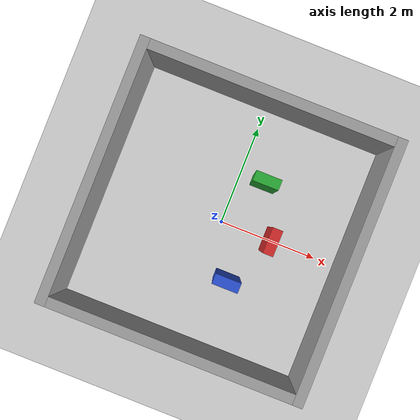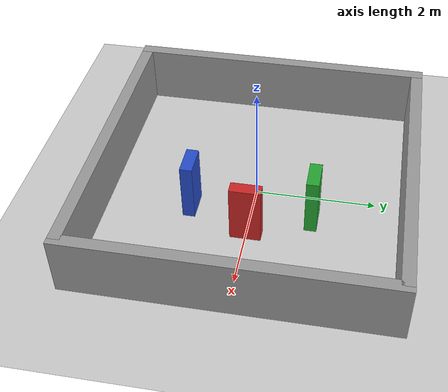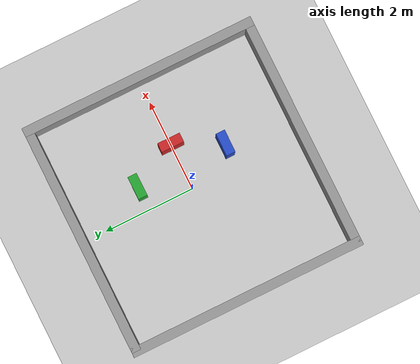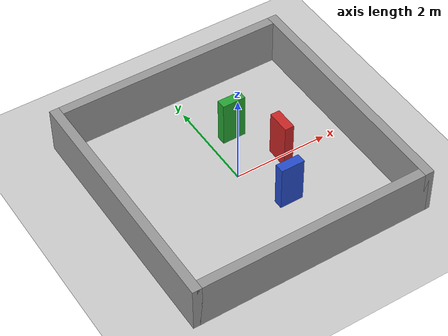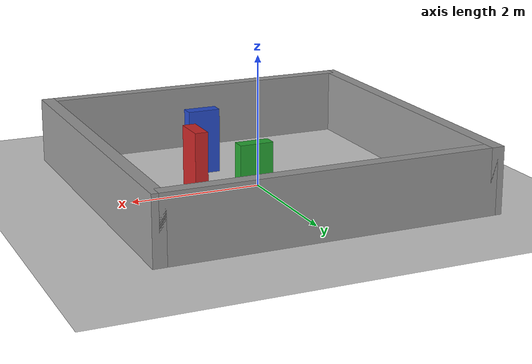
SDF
<?xml version="1.0" ?>
<sdf version="1.6">
  <world name="playground">
    <include>
      <uri>model://sun</uri>
    </include>
    <include>
      <uri>model://ground_plane</uri>
    </include>

    <!-- Obstacle 1: Red Box in front -->
    <model name="obstacle_red">
      <pose>1 0 0.5 0 0 0</pose>
      <static>true</static>
      <link name="link">
        <collision name="collision">
          <geometry><box><size>0.2 0.5 1</size></box></geometry>
        </collision>
        <visual name="visual">
          <geometry><box><size>0.2 0.5 1</size></box></geometry>
          <material><script><name>Gazebo/Red</name></script></material>
        </visual>
      </link>
    </model>

    <!-- Obstacle 2: Green Box to the left -->
    <model name="obstacle_green">
      <pose>0.5 1 0.5 0 0 0</pose>
      <static>true</static>
      <link name="link">
        <collision name="collision">
          <geometry><box><size>0.5 0.2 1</size></box></geometry>
        </collision>
        <visual name="visual">
          <geometry><box><size>0.5 0.2 1</size></box></geometry>
          <material><script><name>Gazebo/Green</name></script></material>
        </visual>
      </link>
    </model>

    <!-- Obstacle 3: Blue Box to the right -->
    <model name="obstacle_blue">
      <pose>0.5 -1 0.5 0 0 0</pose>
      <static>true</static>
      <link name="link">
        <collision name="collision">
          <geometry><box><size>0.5 0.2 1</size></box></geometry>
        </collision>
        <visual name="visual">
          <geometry><box><size>0.5 0.2 1</size></box></geometry>
          <material><script><name>Gazebo/Blue</name></script></material>
        </visual>
      </link>
    </model>

    <!-- Wall: North -->
    <model name="wall_north">
      <pose>2.5 0 0.5 0 0 0</pose>
      <static>true</static>
      <link name="link">
        <collision name="collision"><geometry><box><size>0.2 5.2 1</size></box></geometry></collision>
        <visual name="visual"><geometry><box><size>0.2 5.2 1</size></box></geometry>
        <material><script><name>Gazebo/Grey</name></script></material></visual>
      </link>
    </model>

    <!-- Wall: South -->
    <model name="wall_south">
      <pose>-2.5 0 0.5 0 0 0</pose>
      <static>true</static>
      <link name="link">
        <collision name="collision"><geometry><box><size>0.2 5.2 1</size></box></geometry></collision>
        <visual name="visual"><geometry><box><size>0.2 5.2 1</size></box></geometry>
        <material><script><name>Gazebo/Grey</name></script></material></visual>
      </link>
    </model>

    <!-- Wall: East -->
    <model name="wall_east">
      <pose>0 2.5 0.5 0 0 0</pose>
      <static>true</static>
      <link name="link">
        <collision name="collision"><geometry><box><size>5 0.2 1</size></box></geometry></collision>
        <visual name="visual"><geometry><box><size>5 0.2 1</size></box></geometry>
        <material><script><name>Gazebo/Grey</name></script></material></visual>
      </link>
    </model>

    <!-- Wall: West -->
    <model name="wall_west">
      <pose>0 -2.5 0.5 0 0 0</pose>
      <static>true</static>
      <link name="link">
        <collision name="collision"><geometry><box><size>5 0.2 1</size></box></geometry></collision>
        <visual name="visual"><geometry><box><size>5 0.2 1</size></box></geometry>
        <material><script><name>Gazebo/Grey</name></script></material></visual>
      </link>
    </model>

  </world>
</sdf>
